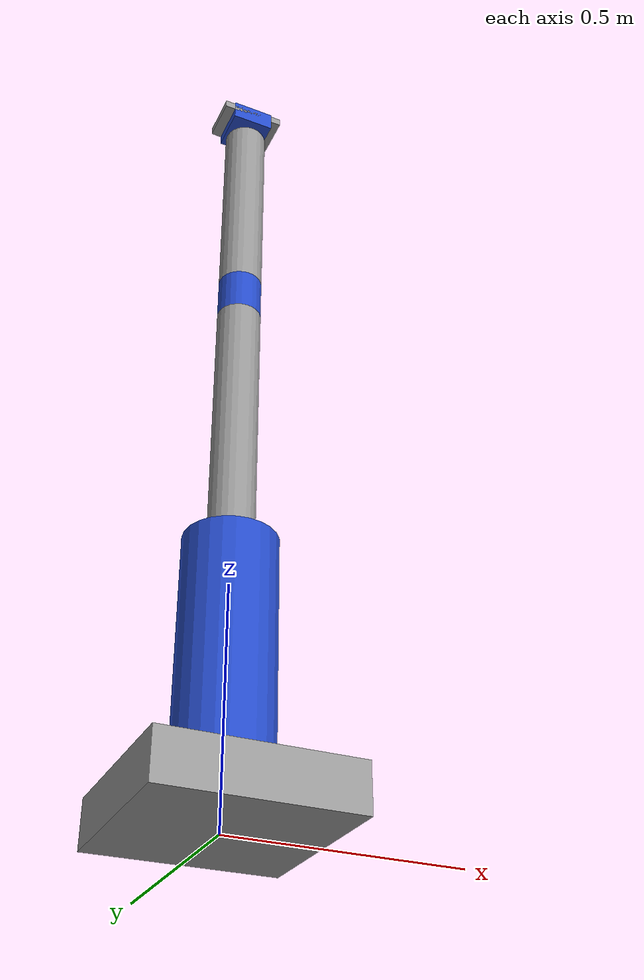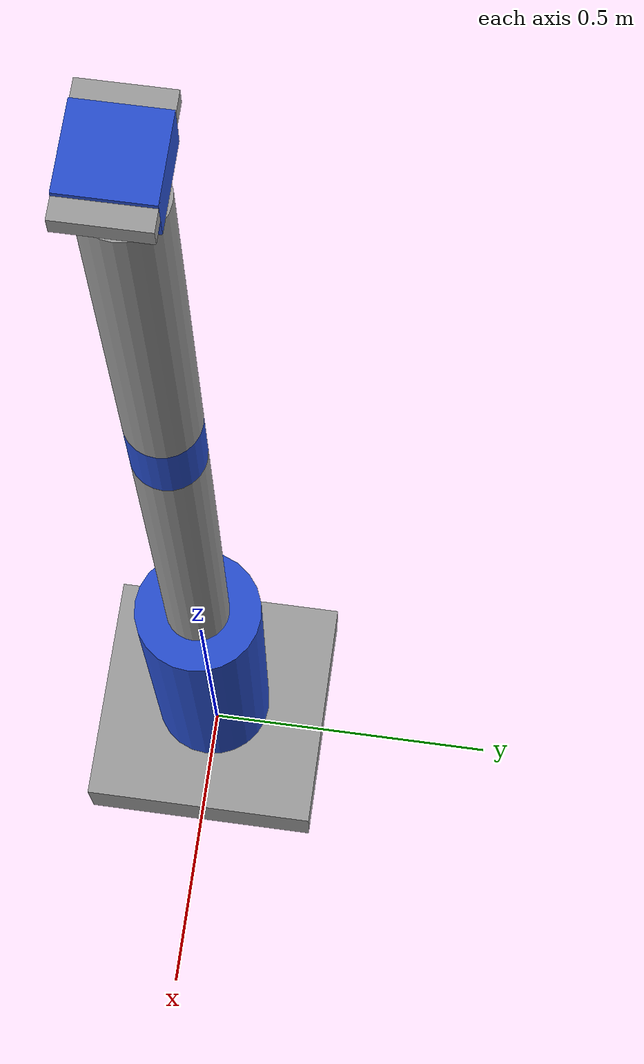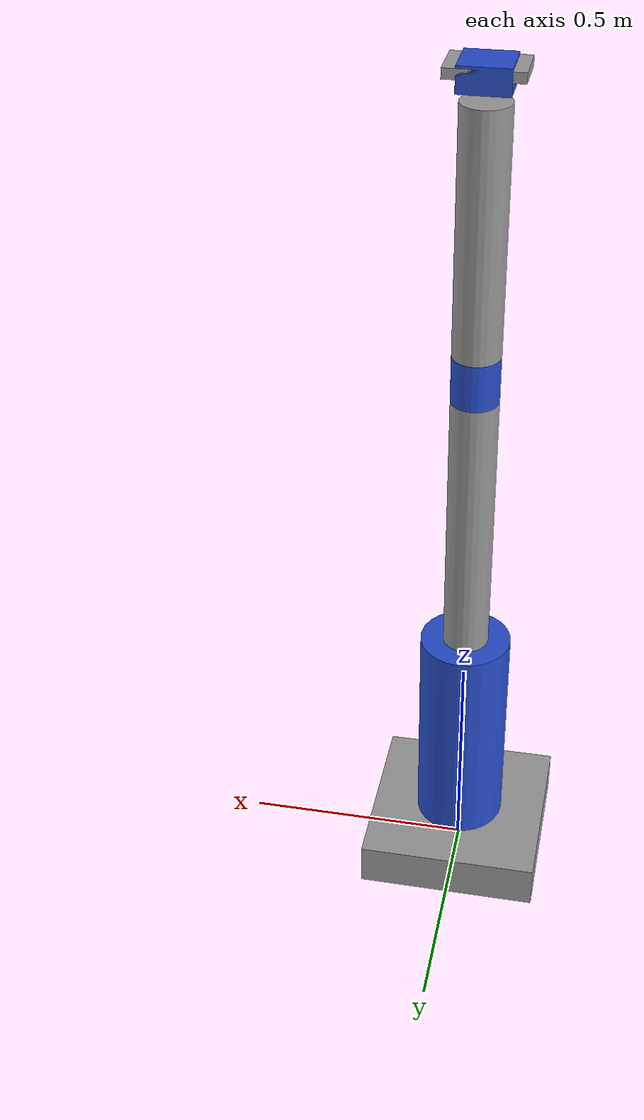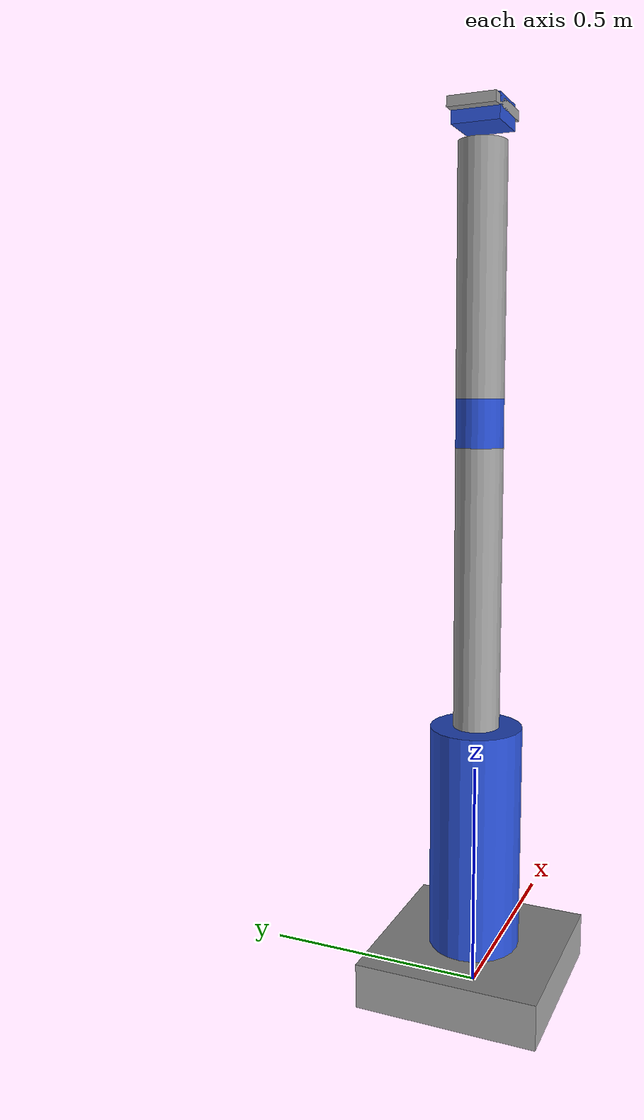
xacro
<?xml version="1.0"?>
<robot xmlns:xacro="http://ros.org/wiki/xacro">

    <link name="base_link">
        <visual>
            <geometry>
                <box size="0.4 0.4 0.1"/>
            </geometry>
            <origin xyz="0 0 0.05" rpy="0 0 0"/>
            <material name="grey"/>
        </visual>
        <collision>
            <geometry>
                <box size="0.4 0.4 0.1"/>
            </geometry>
            <origin xyz="0 0 0.05" rpy="0 0 0"/>
        </collision>
    </link>

    <joint name="joint1" type="revolute">
        <parent link="base_link"/>
        <child link="shoulder_link"/>
        <origin xyz="0 0 0.1" rpy="0 0 0"/>
        <axis xyz="0 0 1"/>
        <limit effort="1000.0" velocity="1.0" lower="-3.14" upper="3.14"/>
    </joint>

    <link name="shoulder_link">
        <visual>
            <geometry>
                <cylinder length="0.5" radius="0.1"/>
            </geometry>
            <origin xyz="0 0 0.25" rpy="0 0 0"/>
            <material name="blue"/>
        </visual>
        <collision>
            <geometry>
                <box size="0.2 0.2 0.5"/>
            </geometry>
            <origin xyz="0 0 0.25" rpy="0 0 0"/>
        </collision>
    </link>

    <joint name="joint2" type="revolute">
        <parent link="shoulder_link"/>
        <child link="arm_link"/>
        <origin xyz="0 0 0.5" rpy="0 0 0"/>
        <axis xyz="0 1 0"/>
        <limit effort="1000.0" velocity="1.0" lower="0" upper="2.5"/>
    </joint>

    <link name="arm_link">
        <visual>
            <geometry>
                <cylinder length="0.6" radius="0.05"/>
            </geometry>
            <origin xyz="0 0 0.3" rpy="0 0 0"/>
            <material name="grey"/>
        </visual>
        <collision>
            <geometry>
                <cylinder length="0.6" radius="0.05"/>
            </geometry>
            <origin xyz="0 0 0.3" rpy="0 0 0"/>
        </collision>
    </link>

    <joint name="joint3" type="revolute">
        <parent link="arm_link"/>
        <child link="elbow_link"/>
        <origin xyz="0 0 0.6" rpy="0 0 0"/>
        <axis xyz="0 1 0"/>
        <limit effort="1000.0" velocity="1.0" lower="0" upper="2.5"/>
    </joint>

    <link name="elbow_link">
        <visual>
            <geometry>
                <cylinder length="0.1" radius="0.05"/>
            </geometry>
            <origin xyz="0 0 0.05" rpy="0 0 0"/>
            <material name="blue"/>
        </visual>
        <collision>
            <geometry>
                <cylinder length="0.1" radius="0.05"/>
            </geometry>
            <origin xyz="0 0 0.05" rpy="0 0 0"/>
        </collision>
    </link>

    <joint name="joint4" type="revolute">
        <parent link="elbow_link"/>
        <child link="forearm_link"/>
        <origin xyz="0 0 0.1" rpy="0 0 0"/>
        <axis xyz="0 0 1"/>
        <limit effort="1000.0" velocity="1.0" lower="-3.14" upper="3.14"/>
    </joint>

    <link name="forearm_link">
        <visual>
            <geometry>
                <cylinder length="0.5" radius="0.05"/>
            </geometry>
            <origin xyz="0 0 0.25" rpy="0 0 0"/>
            <material name="grey"/>
        </visual>
        <collision>
            <geometry>
                <cylinder length="0.5" radius="0.05"/>
            </geometry>
            <origin xyz="0 0 0.25" rpy="0 0 0"/>
        </collision>
    </link>

    <joint name="joint5" type="revolute">
        <parent link="forearm_link"/>
        <child link="wrist_link"/>
        <origin xyz="0 0 0.5" rpy="0 0 0"/>
        <axis xyz="0 1 0"/>
        <limit effort="1000.0" velocity="1.0" lower="-1.57" upper="1.57"/>
    </joint>

    <link name="wrist_link">
        <visual>
            <geometry>
                <box size="0.1 0.1 0.05"/>
            </geometry>
            <origin xyz="0 0 0.05" rpy="0 0 0"/>
            <material name="blue"/>
        </visual>
        <collision>
            <geometry>
                <box size="0.1 0.1 0.05"/>
            </geometry>
            <origin xyz="0 0 0.05" rpy="0 0 0"/>
        </collision>
    </link>

    <joint name="joint6" type="continuous">
        <parent link="wrist_link"/>
        <child link="hand_link"/>
        <origin xyz="0 0 0.05" rpy="0 0 0"/>
        <axis xyz="0 0 1"/>
    </joint>

    <link name="hand_link">
        <visual>
            <geometry>
                <box size="0.15 0.1 0.02"/>
            </geometry>
            <origin xyz="0 0 0.01" rpy="0 0 0"/>
            <material name="grey"/>
        </visual>
        <collision>
            <geometry>
                <box size="0.15 0.1 0.02"/>
            </geometry>
            <origin xyz="0 0 0.01" rpy="0 0 0"/>
        </collision>
    </link>

    <joint name="hand_tool_joint" type="fixed">
        <parent link="hand_link"/>
        <child link="tool_link"/>
        <origin xyz="0 0 0.02" rpy="0 0 0"/>
    </joint>

    <link name="tool_link"/>

</robot>
